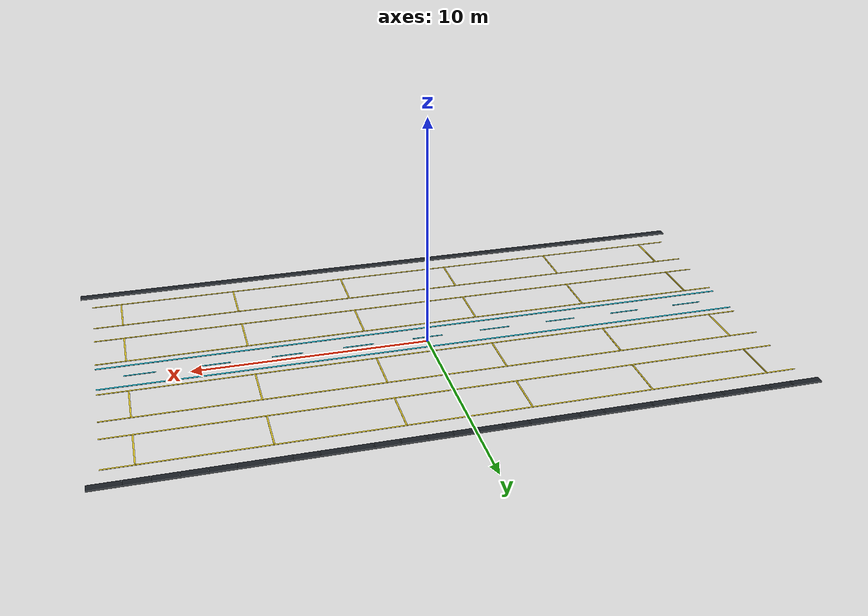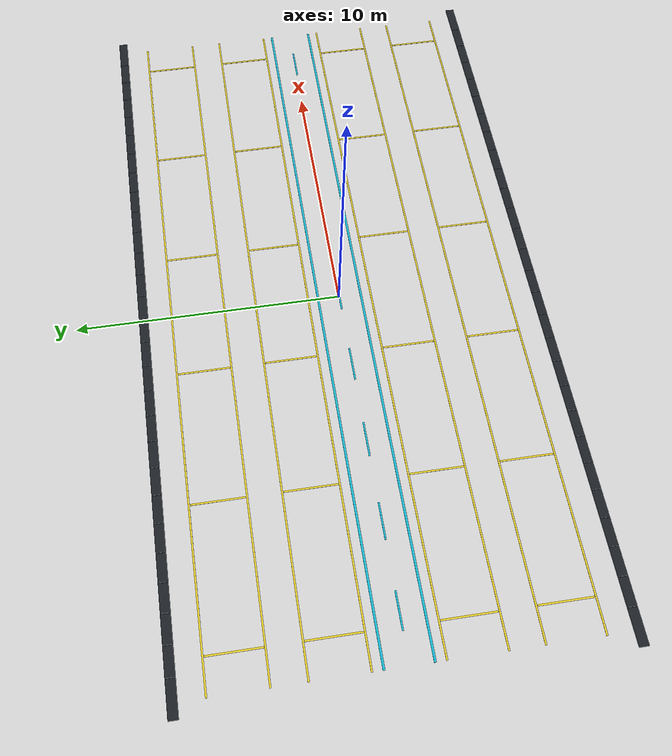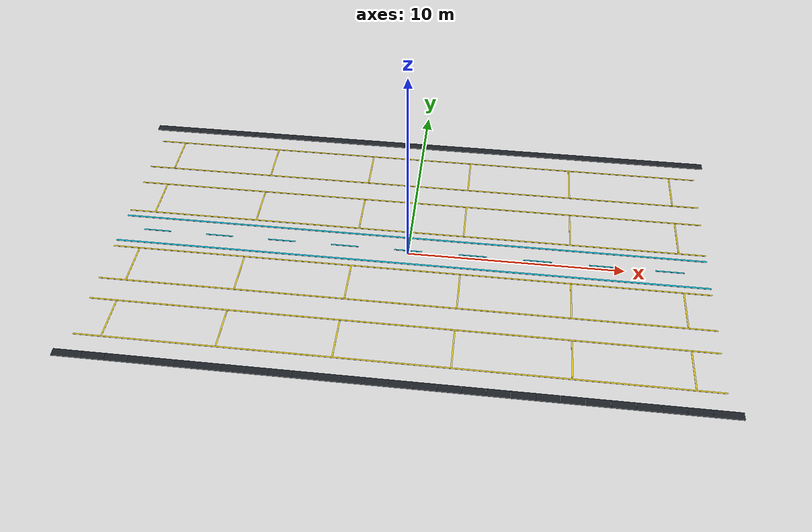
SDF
<sdf version="1.7">
 <world name="ev_car_carrier_deck_world">
  <model name="deck_markings">
   <static>true</static>
   <link name="link">
    <visual name="lane_line_-6.4_visual">
     <pose>0.0000 -6.4000 0.2080 0.0000 0.0000 0.0000</pose>
     <geometry><box><size>27.5 0.06 0.012</size></box></geometry>
     <material><ambient>0.92 0.82 0.15 1</ambient><diffuse>0.92 0.82 0.15 1</diffuse></material>
    </visual>
    <visual name="lane_line_-4.4_visual">
     <pose>0.0000 -4.4000 0.2080 0.0000 0.0000 0.0000</pose>
     <geometry><box><size>27.5 0.06 0.012</size></box></geometry>
     <material><ambient>0.92 0.82 0.15 1</ambient><diffuse>0.92 0.82 0.15 1</diffuse></material>
    </visual>
    <visual name="lane_line_-3.2_visual">
     <pose>0.0000 -3.2000 0.2080 0.0000 0.0000 0.0000</pose>
     <geometry><box><size>27.5 0.06 0.012</size></box></geometry>
     <material><ambient>0.92 0.82 0.15 1</ambient><diffuse>0.92 0.82 0.15 1</diffuse></material>
    </visual>
    <visual name="lane_line_-1.2_visual">
     <pose>0.0000 -1.2000 0.2080 0.0000 0.0000 0.0000</pose>
     <geometry><box><size>27.5 0.06 0.012</size></box></geometry>
     <material><ambient>0.92 0.82 0.15 1</ambient><diffuse>0.92 0.82 0.15 1</diffuse></material>
    </visual>
    <visual name="lane_line_1.2_visual">
     <pose>0.0000 1.2000 0.2080 0.0000 0.0000 0.0000</pose>
     <geometry><box><size>27.5 0.06 0.012</size></box></geometry>
     <material><ambient>0.92 0.82 0.15 1</ambient><diffuse>0.92 0.82 0.15 1</diffuse></material>
    </visual>
    <visual name="lane_line_3.2_visual">
     <pose>0.0000 3.2000 0.2080 0.0000 0.0000 0.0000</pose>
     <geometry><box><size>27.5 0.06 0.012</size></box></geometry>
     <material><ambient>0.92 0.82 0.15 1</ambient><diffuse>0.92 0.82 0.15 1</diffuse></material>
    </visual>
    <visual name="lane_line_4.4_visual">
     <pose>0.0000 4.4000 0.2080 0.0000 0.0000 0.0000</pose>
     <geometry><box><size>27.5 0.06 0.012</size></box></geometry>
     <material><ambient>0.92 0.82 0.15 1</ambient><diffuse>0.92 0.82 0.15 1</diffuse></material>
    </visual>
    <visual name="lane_line_6.4_visual">
     <pose>0.0000 6.4000 0.2080 0.0000 0.0000 0.0000</pose>
     <geometry><box><size>27.5 0.06 0.012</size></box></geometry>
     <material><ambient>0.92 0.82 0.15 1</ambient><diffuse>0.92 0.82 0.15 1</diffuse></material>
    </visual>
    <visual name="bay_end_-12.5_-5.4_visual">
     <pose>-12.5000 -5.4000 0.2080 0.0000 0.0000 0.0000</pose>
     <geometry><box><size>0.06 1.9 0.012</size></box></geometry>
     <material><ambient>0.92 0.82 0.15 1</ambient><diffuse>0.92 0.82 0.15 1</diffuse></material>
    </visual>
    <visual name="bay_end_-12.5_-2.2_visual">
     <pose>-12.5000 -2.2000 0.2080 0.0000 0.0000 0.0000</pose>
     <geometry><box><size>0.06 1.9 0.012</size></box></geometry>
     <material><ambient>0.92 0.82 0.15 1</ambient><diffuse>0.92 0.82 0.15 1</diffuse></material>
    </visual>
    <visual name="bay_end_-12.5_2.2_visual">
     <pose>-12.5000 2.2000 0.2080 0.0000 0.0000 0.0000</pose>
     <geometry><box><size>0.06 1.9 0.012</size></box></geometry>
     <material><ambient>0.92 0.82 0.15 1</ambient><diffuse>0.92 0.82 0.15 1</diffuse></material>
    </visual>
    <visual name="bay_end_-12.5_5.4_visual">
     <pose>-12.5000 5.4000 0.2080 0.0000 0.0000 0.0000</pose>
     <geometry><box><size>0.06 1.9 0.012</size></box></geometry>
     <material><ambient>0.92 0.82 0.15 1</ambient><diffuse>0.92 0.82 0.15 1</diffuse></material>
    </visual>
    <visual name="bay_end_-7.5_-5.4_visual">
     <pose>-7.5000 -5.4000 0.2080 0.0000 0.0000 0.0000</pose>
     <geometry><box><size>0.06 1.9 0.012</size></box></geometry>
     <material><ambient>0.92 0.82 0.15 1</ambient><diffuse>0.92 0.82 0.15 1</diffuse></material>
    </visual>
    <visual name="bay_end_-7.5_-2.2_visual">
     <pose>-7.5000 -2.2000 0.2080 0.0000 0.0000 0.0000</pose>
     <geometry><box><size>0.06 1.9 0.012</size></box></geometry>
     <material><ambient>0.92 0.82 0.15 1</ambient><diffuse>0.92 0.82 0.15 1</diffuse></material>
    </visual>
    <visual name="bay_end_-7.5_2.2_visual">
     <pose>-7.5000 2.2000 0.2080 0.0000 0.0000 0.0000</pose>
     <geometry><box><size>0.06 1.9 0.012</size></box></geometry>
     <material><ambient>0.92 0.82 0.15 1</ambient><diffuse>0.92 0.82 0.15 1</diffuse></material>
    </visual>
    <visual name="bay_end_-7.5_5.4_visual">
     <pose>-7.5000 5.4000 0.2080 0.0000 0.0000 0.0000</pose>
     <geometry><box><size>0.06 1.9 0.012</size></box></geometry>
     <material><ambient>0.92 0.82 0.15 1</ambient><diffuse>0.92 0.82 0.15 1</diffuse></material>
    </visual>
    <visual name="bay_end_-2.5_-5.4_visual">
     <pose>-2.5000 -5.4000 0.2080 0.0000 0.0000 0.0000</pose>
     <geometry><box><size>0.06 1.9 0.012</size></box></geometry>
     <material><ambient>0.92 0.82 0.15 1</ambient><diffuse>0.92 0.82 0.15 1</diffuse></material>
    </visual>
    <visual name="bay_end_-2.5_-2.2_visual">
     <pose>-2.5000 -2.2000 0.2080 0.0000 0.0000 0.0000</pose>
     <geometry><box><size>0.06 1.9 0.012</size></box></geometry>
     <material><ambient>0.92 0.82 0.15 1</ambient><diffuse>0.92 0.82 0.15 1</diffuse></material>
    </visual>
    <visual name="bay_end_-2.5_2.2_visual">
     <pose>-2.5000 2.2000 0.2080 0.0000 0.0000 0.0000</pose>
     <geometry><box><size>0.06 1.9 0.012</size></box></geometry>
     <material><ambient>0.92 0.82 0.15 1</ambient><diffuse>0.92 0.82 0.15 1</diffuse></material>
    </visual>
    <visual name="bay_end_-2.5_5.4_visual">
     <pose>-2.5000 5.4000 0.2080 0.0000 0.0000 0.0000</pose>
     <geometry><box><size>0.06 1.9 0.012</size></box></geometry>
     <material><ambient>0.92 0.82 0.15 1</ambient><diffuse>0.92 0.82 0.15 1</diffuse></material>
    </visual>
    <visual name="bay_end_2.5_-5.4_visual">
     <pose>2.5000 -5.4000 0.2080 0.0000 0.0000 0.0000</pose>
     <geometry><box><size>0.06 1.9 0.012</size></box></geometry>
     <material><ambient>0.92 0.82 0.15 1</ambient><diffuse>0.92 0.82 0.15 1</diffuse></material>
    </visual>
    <visual name="bay_end_2.5_-2.2_visual">
     <pose>2.5000 -2.2000 0.2080 0.0000 0.0000 0.0000</pose>
     <geometry><box><size>0.06 1.9 0.012</size></box></geometry>
     <material><ambient>0.92 0.82 0.15 1</ambient><diffuse>0.92 0.82 0.15 1</diffuse></material>
    </visual>
    <visual name="bay_end_2.5_2.2_visual">
     <pose>2.5000 2.2000 0.2080 0.0000 0.0000 0.0000</pose>
     <geometry><box><size>0.06 1.9 0.012</size></box></geometry>
     <material><ambient>0.92 0.82 0.15 1</ambient><diffuse>0.92 0.82 0.15 1</diffuse></material>
    </visual>
    <visual name="bay_end_2.5_5.4_visual">
     <pose>2.5000 5.4000 0.2080 0.0000 0.0000 0.0000</pose>
     <geometry><box><size>0.06 1.9 0.012</size></box></geometry>
     <material><ambient>0.92 0.82 0.15 1</ambient><diffuse>0.92 0.82 0.15 1</diffuse></material>
    </visual>
    <visual name="bay_end_7.5_-5.4_visual">
     <pose>7.5000 -5.4000 0.2080 0.0000 0.0000 0.0000</pose>
     <geometry><box><size>0.06 1.9 0.012</size></box></geometry>
     <material><ambient>0.92 0.82 0.15 1</ambient><diffuse>0.92 0.82 0.15 1</diffuse></material>
    </visual>
    <visual name="bay_end_7.5_-2.2_visual">
     <pose>7.5000 -2.2000 0.2080 0.0000 0.0000 0.0000</pose>
     <geometry><box><size>0.06 1.9 0.012</size></box></geometry>
     <material><ambient>0.92 0.82 0.15 1</ambient><diffuse>0.92 0.82 0.15 1</diffuse></material>
    </visual>
    <visual name="bay_end_7.5_2.2_visual">
     <pose>7.5000 2.2000 0.2080 0.0000 0.0000 0.0000</pose>
     <geometry><box><size>0.06 1.9 0.012</size></box></geometry>
     <material><ambient>0.92 0.82 0.15 1</ambient><diffuse>0.92 0.82 0.15 1</diffuse></material>
    </visual>
    <visual name="bay_end_7.5_5.4_visual">
     <pose>7.5000 5.4000 0.2080 0.0000 0.0000 0.0000</pose>
     <geometry><box><size>0.06 1.9 0.012</size></box></geometry>
     <material><ambient>0.92 0.82 0.15 1</ambient><diffuse>0.92 0.82 0.15 1</diffuse></material>
    </visual>
    <visual name="bay_end_12.5_-5.4_visual">
     <pose>12.5000 -5.4000 0.2080 0.0000 0.0000 0.0000</pose>
     <geometry><box><size>0.06 1.9 0.012</size></box></geometry>
     <material><ambient>0.92 0.82 0.15 1</ambient><diffuse>0.92 0.82 0.15 1</diffuse></material>
    </visual>
    <visual name="bay_end_12.5_-2.2_visual">
     <pose>12.5000 -2.2000 0.2080 0.0000 0.0000 0.0000</pose>
     <geometry><box><size>0.06 1.9 0.012</size></box></geometry>
     <material><ambient>0.92 0.82 0.15 1</ambient><diffuse>0.92 0.82 0.15 1</diffuse></material>
    </visual>
    <visual name="bay_end_12.5_2.2_visual">
     <pose>12.5000 2.2000 0.2080 0.0000 0.0000 0.0000</pose>
     <geometry><box><size>0.06 1.9 0.012</size></box></geometry>
     <material><ambient>0.92 0.82 0.15 1</ambient><diffuse>0.92 0.82 0.15 1</diffuse></material>
    </visual>
    <visual name="bay_end_12.5_5.4_visual">
     <pose>12.5000 5.4000 0.2080 0.0000 0.0000 0.0000</pose>
     <geometry><box><size>0.06 1.9 0.012</size></box></geometry>
     <material><ambient>0.92 0.82 0.15 1</ambient><diffuse>0.92 0.82 0.15 1</diffuse></material>
    </visual>
    <visual name="robot_lane_left_visual">
     <pose>0.0000 -0.8200 0.2100 0.0000 0.0000 0.0000</pose>
     <geometry><box><size>27.5 0.08 0.012</size></box></geometry>
     <material><ambient>0.08 0.72 0.82 1</ambient><diffuse>0.08 0.72 0.82 1</diffuse></material>
    </visual>
    <visual name="robot_lane_right_visual">
     <pose>0.0000 0.8200 0.2100 0.0000 0.0000 0.0000</pose>
     <geometry><box><size>27.5 0.08 0.012</size></box></geometry>
     <material><ambient>0.08 0.72 0.82 1</ambient><diffuse>0.08 0.72 0.82 1</diffuse></material>
    </visual>
    <visual name="robot_lane_dash_-12_visual">
     <pose>-12.0000 0.0000 0.2120 0.0000 0.0000 0.0000</pose>
     <geometry><box><size>1.3 0.06 0.012</size></box></geometry>
     <material><ambient>0.08 0.72 0.82 1</ambient><diffuse>0.08 0.72 0.82 1</diffuse></material>
    </visual>
    <visual name="robot_lane_dash_-9_visual">
     <pose>-9.0000 0.0000 0.2120 0.0000 0.0000 0.0000</pose>
     <geometry><box><size>1.3 0.06 0.012</size></box></geometry>
     <material><ambient>0.08 0.72 0.82 1</ambient><diffuse>0.08 0.72 0.82 1</diffuse></material>
    </visual>
    <visual name="robot_lane_dash_-6_visual">
     <pose>-6.0000 0.0000 0.2120 0.0000 0.0000 0.0000</pose>
     <geometry><box><size>1.3 0.06 0.012</size></box></geometry>
     <material><ambient>0.08 0.72 0.82 1</ambient><diffuse>0.08 0.72 0.82 1</diffuse></material>
    </visual>
    <visual name="robot_lane_dash_-3_visual">
     <pose>-3.0000 0.0000 0.2120 0.0000 0.0000 0.0000</pose>
     <geometry><box><size>1.3 0.06 0.012</size></box></geometry>
     <material><ambient>0.08 0.72 0.82 1</ambient><diffuse>0.08 0.72 0.82 1</diffuse></material>
    </visual>
    <visual name="robot_lane_dash_0_visual">
     <pose>0.0000 0.0000 0.2120 0.0000 0.0000 0.0000</pose>
     <geometry><box><size>1.3 0.06 0.012</size></box></geometry>
     <material><ambient>0.08 0.72 0.82 1</ambient><diffuse>0.08 0.72 0.82 1</diffuse></material>
    </visual>
    <visual name="robot_lane_dash_3_visual">
     <pose>3.0000 0.0000 0.2120 0.0000 0.0000 0.0000</pose>
     <geometry><box><size>1.3 0.06 0.012</size></box></geometry>
     <material><ambient>0.08 0.72 0.82 1</ambient><diffuse>0.08 0.72 0.82 1</diffuse></material>
    </visual>
    <visual name="robot_lane_dash_6_visual">
     <pose>6.0000 0.0000 0.2120 0.0000 0.0000 0.0000</pose>
     <geometry><box><size>1.3 0.06 0.012</size></box></geometry>
     <material><ambient>0.08 0.72 0.82 1</ambient><diffuse>0.08 0.72 0.82 1</diffuse></material>
    </visual>
    <visual name="robot_lane_dash_9_visual">
     <pose>9.0000 0.0000 0.2120 0.0000 0.0000 0.0000</pose>
     <geometry><box><size>1.3 0.06 0.012</size></box></geometry>
     <material><ambient>0.08 0.72 0.82 1</ambient><diffuse>0.08 0.72 0.82 1</diffuse></material>
    </visual>
    <visual name="robot_lane_dash_12_visual">
     <pose>12.0000 0.0000 0.2120 0.0000 0.0000 0.0000</pose>
     <geometry><box><size>1.3 0.06 0.012</size></box></geometry>
     <material><ambient>0.08 0.72 0.82 1</ambient><diffuse>0.08 0.72 0.82 1</diffuse></material>
    </visual>
   </link>
  </model>
  <model name="deck_drainage">
   <static>true</static>
   <link name="link">
    <collision name="gutter_-7.45_collision">
     <pose>0.0000 -7.4500 0.2250 0.0000 0.0000 0.0000</pose>
     <geometry><box><size>28.5 0.34 0.05</size></box></geometry>
    </collision>
    <visual name="gutter_-7.45_visual">
     <pose>0.0000 -7.4500 0.2250 0.0000 0.0000 0.0000</pose>
     <geometry><box><size>28.5 0.34 0.05</size></box></geometry>
     <material><ambient>0.11 0.13 0.15 1</ambient><diffuse>0.11 0.13 0.15 1</diffuse></material>
    </visual>
    <visual name="grate_-7.45_-13_visual">
     <pose>-13.0000 -7.4500 0.2580 0.0000 0.0000 0.0000</pose>
     <geometry><box><size>0.03 0.3 0.018</size></box></geometry>
     <material><ambient>0.34 0.37 0.4 1</ambient><diffuse>0.34 0.37 0.4 1</diffuse></material>
    </visual>
    <visual name="grate_-7.45_-12_visual">
     <pose>-12.0000 -7.4500 0.2580 0.0000 0.0000 0.0000</pose>
     <geometry><box><size>0.03 0.3 0.018</size></box></geometry>
     <material><ambient>0.34 0.37 0.4 1</ambient><diffuse>0.34 0.37 0.4 1</diffuse></material>
    </visual>
    <visual name="grate_-7.45_-11_visual">
     <pose>-11.0000 -7.4500 0.2580 0.0000 0.0000 0.0000</pose>
     <geometry><box><size>0.03 0.3 0.018</size></box></geometry>
     <material><ambient>0.34 0.37 0.4 1</ambient><diffuse>0.34 0.37 0.4 1</diffuse></material>
    </visual>
    <visual name="grate_-7.45_-10_visual">
     <pose>-10.0000 -7.4500 0.2580 0.0000 0.0000 0.0000</pose>
     <geometry><box><size>0.03 0.3 0.018</size></box></geometry>
     <material><ambient>0.34 0.37 0.4 1</ambient><diffuse>0.34 0.37 0.4 1</diffuse></material>
    </visual>
    <visual name="grate_-7.45_-9_visual">
     <pose>-9.0000 -7.4500 0.2580 0.0000 0.0000 0.0000</pose>
     <geometry><box><size>0.03 0.3 0.018</size></box></geometry>
     <material><ambient>0.34 0.37 0.4 1</ambient><diffuse>0.34 0.37 0.4 1</diffuse></material>
    </visual>
    <visual name="grate_-7.45_-8_visual">
     <pose>-8.0000 -7.4500 0.2580 0.0000 0.0000 0.0000</pose>
     <geometry><box><size>0.03 0.3 0.018</size></box></geometry>
     <material><ambient>0.34 0.37 0.4 1</ambient><diffuse>0.34 0.37 0.4 1</diffuse></material>
    </visual>
    <visual name="grate_-7.45_-7_visual">
     <pose>-7.0000 -7.4500 0.2580 0.0000 0.0000 0.0000</pose>
     <geometry><box><size>0.03 0.3 0.018</size></box></geometry>
     <material><ambient>0.34 0.37 0.4 1</ambient><diffuse>0.34 0.37 0.4 1</diffuse></material>
    </visual>
    <visual name="grate_-7.45_-6_visual">
     <pose>-6.0000 -7.4500 0.2580 0.0000 0.0000 0.0000</pose>
     <geometry><box><size>0.03 0.3 0.018</size></box></geometry>
     <material><ambient>0.34 0.37 0.4 1</ambient><diffuse>0.34 0.37 0.4 1</diffuse></material>
    </visual>
    <visual name="grate_-7.45_-5_visual">
     <pose>-5.0000 -7.4500 0.2580 0.0000 0.0000 0.0000</pose>
     <geometry><box><size>0.03 0.3 0.018</size></box></geometry>
     <material><ambient>0.34 0.37 0.4 1</ambient><diffuse>0.34 0.37 0.4 1</diffuse></material>
    </visual>
    <visual name="grate_-7.45_-4_visual">
     <pose>-4.0000 -7.4500 0.2580 0.0000 0.0000 0.0000</pose>
     <geometry><box><size>0.03 0.3 0.018</size></box></geometry>
     <material><ambient>0.34 0.37 0.4 1</ambient><diffuse>0.34 0.37 0.4 1</diffuse></material>
    </visual>
    <visual name="grate_-7.45_-3_visual">
     <pose>-3.0000 -7.4500 0.2580 0.0000 0.0000 0.0000</pose>
     <geometry><box><size>0.03 0.3 0.018</size></box></geometry>
     <material><ambient>0.34 0.37 0.4 1</ambient><diffuse>0.34 0.37 0.4 1</diffuse></material>
    </visual>
    <visual name="grate_-7.45_-2_visual">
     <pose>-2.0000 -7.4500 0.2580 0.0000 0.0000 0.0000</pose>
     <geometry><box><size>0.03 0.3 0.018</size></box></geometry>
     <material><ambient>0.34 0.37 0.4 1</ambient><diffuse>0.34 0.37 0.4 1</diffuse></material>
    </visual>
    <visual name="grate_-7.45_-1_visual">
     <pose>-1.0000 -7.4500 0.2580 0.0000 0.0000 0.0000</pose>
     <geometry><box><size>0.03 0.3 0.018</size></box></geometry>
     <material><ambient>0.34 0.37 0.4 1</ambient><diffuse>0.34 0.37 0.4 1</diffuse></material>
    </visual>
    <visual name="grate_-7.45_0_visual">
     <pose>0.0000 -7.4500 0.2580 0.0000 0.0000 0.0000</pose>
     <geometry><box><size>0.03 0.3 0.018</size></box></geometry>
     <material><ambient>0.34 0.37 0.4 1</ambient><diffuse>0.34 0.37 0.4 1</diffuse></material>
    </visual>
    <visual name="grate_-7.45_1_visual">
     <pose>1.0000 -7.4500 0.2580 0.0000 0.0000 0.0000</pose>
     <geometry><box><size>0.03 0.3 0.018</size></box></geometry>
     <material><ambient>0.34 0.37 0.4 1</ambient><diffuse>0.34 0.37 0.4 1</diffuse></material>
    </visual>
    <visual name="grate_-7.45_2_visual">
     <pose>2.0000 -7.4500 0.2580 0.0000 0.0000 0.0000</pose>
     <geometry><box><size>0.03 0.3 0.018</size></box></geometry>
     <material><ambient>0.34 0.37 0.4 1</ambient><diffuse>0.34 0.37 0.4 1</diffuse></material>
    </visual>
    <visual name="grate_-7.45_3_visual">
     <pose>3.0000 -7.4500 0.2580 0.0000 0.0000 0.0000</pose>
     <geometry><box><size>0.03 0.3 0.018</size></box></geometry>
     <material><ambient>0.34 0.37 0.4 1</ambient><diffuse>0.34 0.37 0.4 1</diffuse></material>
    </visual>
    <visual name="grate_-7.45_4_visual">
     <pose>4.0000 -7.4500 0.2580 0.0000 0.0000 0.0000</pose>
     <geometry><box><size>0.03 0.3 0.018</size></box></geometry>
     <material><ambient>0.34 0.37 0.4 1</ambient><diffuse>0.34 0.37 0.4 1</diffuse></material>
    </visual>
    <visual name="grate_-7.45_5_visual">
     <pose>5.0000 -7.4500 0.2580 0.0000 0.0000 0.0000</pose>
     <geometry><box><size>0.03 0.3 0.018</size></box></geometry>
     <material><ambient>0.34 0.37 0.4 1</ambient><diffuse>0.34 0.37 0.4 1</diffuse></material>
    </visual>
    <visual name="grate_-7.45_6_visual">
     <pose>6.0000 -7.4500 0.2580 0.0000 0.0000 0.0000</pose>
     <geometry><box><size>0.03 0.3 0.018</size></box></geometry>
     <material><ambient>0.34 0.37 0.4 1</ambient><diffuse>0.34 0.37 0.4 1</diffuse></material>
    </visual>
    <visual name="grate_-7.45_7_visual">
     <pose>7.0000 -7.4500 0.2580 0.0000 0.0000 0.0000</pose>
     <geometry><box><size>0.03 0.3 0.018</size></box></geometry>
     <material><ambient>0.34 0.37 0.4 1</ambient><diffuse>0.34 0.37 0.4 1</diffuse></material>
    </visual>
    <visual name="grate_-7.45_8_visual">
     <pose>8.0000 -7.4500 0.2580 0.0000 0.0000 0.0000</pose>
     <geometry><box><size>0.03 0.3 0.018</size></box></geometry>
     <material><ambient>0.34 0.37 0.4 1</ambient><diffuse>0.34 0.37 0.4 1</diffuse></material>
    </visual>
    <visual name="grate_-7.45_9_visual">
     <pose>9.0000 -7.4500 0.2580 0.0000 0.0000 0.0000</pose>
     <geometry><box><size>0.03 0.3 0.018</size></box></geometry>
     <material><ambient>0.34 0.37 0.4 1</ambient><diffuse>0.34 0.37 0.4 1</diffuse></material>
    </visual>
    <visual name="grate_-7.45_10_visual">
     <pose>10.0000 -7.4500 0.2580 0.0000 0.0000 0.0000</pose>
     <geometry><box><size>0.03 0.3 0.018</size></box></geometry>
     <material><ambient>0.34 0.37 0.4 1</ambient><diffuse>0.34 0.37 0.4 1</diffuse></material>
    </visual>
    <visual name="grate_-7.45_11_visual">
     <pose>11.0000 -7.4500 0.2580 0.0000 0.0000 0.0000</pose>
     <geometry><box><size>0.03 0.3 0.018</size></box></geometry>
     <material><ambient>0.34 0.37 0.4 1</ambient><diffuse>0.34 0.37 0.4 1</diffuse></material>
    </visual>
    <visual name="grate_-7.45_12_visual">
     <pose>12.0000 -7.4500 0.2580 0.0000 0.0000 0.0000</pose>
     <geometry><box><size>0.03 0.3 0.018</size></box></geometry>
     <material><ambient>0.34 0.37 0.4 1</ambient><diffuse>0.34 0.37 0.4 1</diffuse></material>
    </visual>
    <visual name="grate_-7.45_13_visual">
     <pose>13.0000 -7.4500 0.2580 0.0000 0.0000 0.0000</pose>
     <geometry><box><size>0.03 0.3 0.018</size></box></geometry>
     <material><ambient>0.34 0.37 0.4 1</ambient><diffuse>0.34 0.37 0.4 1</diffuse></material>
    </visual>
    <collision name="gutter_7.45_collision">
     <pose>0.0000 7.4500 0.2250 0.0000 0.0000 0.0000</pose>
     <geometry><box><size>28.5 0.34 0.05</size></box></geometry>
    </collision>
    <visual name="gutter_7.45_visual">
     <pose>0.0000 7.4500 0.2250 0.0000 0.0000 0.0000</pose>
     <geometry><box><size>28.5 0.34 0.05</size></box></geometry>
     <material><ambient>0.11 0.13 0.15 1</ambient><diffuse>0.11 0.13 0.15 1</diffuse></material>
    </visual>
    <visual name="grate_7.45_-13_visual">
     <pose>-13.0000 7.4500 0.2580 0.0000 0.0000 0.0000</pose>
     <geometry><box><size>0.03 0.3 0.018</size></box></geometry>
     <material><ambient>0.34 0.37 0.4 1</ambient><diffuse>0.34 0.37 0.4 1</diffuse></material>
    </visual>
    <visual name="grate_7.45_-12_visual">
     <pose>-12.0000 7.4500 0.2580 0.0000 0.0000 0.0000</pose>
     <geometry><box><size>0.03 0.3 0.018</size></box></geometry>
     <material><ambient>0.34 0.37 0.4 1</ambient><diffuse>0.34 0.37 0.4 1</diffuse></material>
    </visual>
    <visual name="grate_7.45_-11_visual">
     <pose>-11.0000 7.4500 0.2580 0.0000 0.0000 0.0000</pose>
     <geometry><box><size>0.03 0.3 0.018</size></box></geometry>
     <material><ambient>0.34 0.37 0.4 1</ambient><diffuse>0.34 0.37 0.4 1</diffuse></material>
    </visual>
    <visual name="grate_7.45_-10_visual">
     <pose>-10.0000 7.4500 0.2580 0.0000 0.0000 0.0000</pose>
     <geometry><box><size>0.03 0.3 0.018</size></box></geometry>
     <material><ambient>0.34 0.37 0.4 1</ambient><diffuse>0.34 0.37 0.4 1</diffuse></material>
    </visual>
    <visual name="grate_7.45_-9_visual">
     <pose>-9.0000 7.4500 0.2580 0.0000 0.0000 0.0000</pose>
     <geometry><box><size>0.03 0.3 0.018</size></box></geometry>
     <material><ambient>0.34 0.37 0.4 1</ambient><diffuse>0.34 0.37 0.4 1</diffuse></material>
    </visual>
    <visual name="grate_7.45_-8_visual">
     <pose>-8.0000 7.4500 0.2580 0.0000 0.0000 0.0000</pose>
     <geometry><box><size>0.03 0.3 0.018</size></box></geometry>
     <material><ambient>0.34 0.37 0.4 1</ambient><diffuse>0.34 0.37 0.4 1</diffuse></material>
    </visual>
    <visual name="grate_7.45_-7_visual">
     <pose>-7.0000 7.4500 0.2580 0.0000 0.0000 0.0000</pose>
     <geometry><box><size>0.03 0.3 0.018</size></box></geometry>
     <material><ambient>0.34 0.37 0.4 1</ambient><diffuse>0.34 0.37 0.4 1</diffuse></material>
    </visual>
    <visual name="grate_7.45_-6_visual">
     <pose>-6.0000 7.4500 0.2580 0.0000 0.0000 0.0000</pose>
     <geometry><box><size>0.03 0.3 0.018</size></box></geometry>
     <material><ambient>0.34 0.37 0.4 1</ambient><diffuse>0.34 0.37 0.4 1</diffuse></material>
    </visual>
    <visual name="grate_7.45_-5_visual">
     <pose>-5.0000 7.4500 0.2580 0.0000 0.0000 0.0000</pose>
     <geometry><box><size>0.03 0.3 0.018</size></box></geometry>
     <material><ambient>0.34 0.37 0.4 1</ambient><diffuse>0.34 0.37 0.4 1</diffuse></material>
    </visual>
    <visual name="grate_7.45_-4_visual">
     <pose>-4.0000 7.4500 0.2580 0.0000 0.0000 0.0000</pose>
     <geometry><box><size>0.03 0.3 0.018</size></box></geometry>
     <material><ambient>0.34 0.37 0.4 1</ambient><diffuse>0.34 0.37 0.4 1</diffuse></material>
    </visual>
    <visual name="grate_7.45_-3_visual">
     <pose>-3.0000 7.4500 0.2580 0.0000 0.0000 0.0000</pose>
     <geometry><box><size>0.03 0.3 0.018</size></box></geometry>
     <material><ambient>0.34 0.37 0.4 1</ambient><diffuse>0.34 0.37 0.4 1</diffuse></material>
    </visual>
    <visual name="grate_7.45_-2_visual">
     <pose>-2.0000 7.4500 0.2580 0.0000 0.0000 0.0000</pose>
     <geometry><box><size>0.03 0.3 0.018</size></box></geometry>
     <material><ambient>0.34 0.37 0.4 1</ambient><diffuse>0.34 0.37 0.4 1</diffuse></material>
    </visual>
    <visual name="grate_7.45_-1_visual">
     <pose>-1.0000 7.4500 0.2580 0.0000 0.0000 0.0000</pose>
     <geometry><box><size>0.03 0.3 0.018</size></box></geometry>
     <material><ambient>0.34 0.37 0.4 1</ambient><diffuse>0.34 0.37 0.4 1</diffuse></material>
    </visual>
    <visual name="grate_7.45_0_visual">
     <pose>0.0000 7.4500 0.2580 0.0000 0.0000 0.0000</pose>
     <geometry><box><size>0.03 0.3 0.018</size></box></geometry>
     <material><ambient>0.34 0.37 0.4 1</ambient><diffuse>0.34 0.37 0.4 1</diffuse></material>
    </visual>
    <visual name="grate_7.45_1_visual">
     <pose>1.0000 7.4500 0.2580 0.0000 0.0000 0.0000</pose>
     <geometry><box><size>0.03 0.3 0.018</size></box></geometry>
     <material><ambient>0.34 0.37 0.4 1</ambient><diffuse>0.34 0.37 0.4 1</diffuse></material>
    </visual>
    <visual name="grate_7.45_2_visual">
     <pose>2.0000 7.4500 0.2580 0.0000 0.0000 0.0000</pose>
     <geometry><box><size>0.03 0.3 0.018</size></box></geometry>
     <material><ambient>0.34 0.37 0.4 1</ambient><diffuse>0.34 0.37 0.4 1</diffuse></material>
    </visual>
    <visual name="grate_7.45_3_visual">
     <pose>3.0000 7.4500 0.2580 0.0000 0.0000 0.0000</pose>
     <geometry><box><size>0.03 0.3 0.018</size></box></geometry>
     <material><ambient>0.34 0.37 0.4 1</ambient><diffuse>0.34 0.37 0.4 1</diffuse></material>
    </visual>
    <visual name="grate_7.45_4_visual">
     <pose>4.0000 7.4500 0.2580 0.0000 0.0000 0.0000</pose>
     <geometry><box><size>0.03 0.3 0.018</size></box></geometry>
     <material><ambient>0.34 0.37 0.4 1</ambient><diffuse>0.34 0.37 0.4 1</diffuse></material>
    </visual>
    <visual name="grate_7.45_5_visual">
     <pose>5.0000 7.4500 0.2580 0.0000 0.0000 0.0000</pose>
     <geometry><box><size>0.03 0.3 0.018</size></box></geometry>
     <material><ambient>0.34 0.37 0.4 1</ambient><diffuse>0.34 0.37 0.4 1</diffuse></material>
    </visual>
    <visual name="grate_7.45_6_visual">
     <pose>6.0000 7.4500 0.2580 0.0000 0.0000 0.0000</pose>
     <geometry><box><size>0.03 0.3 0.018</size></box></geometry>
     <material><ambient>0.34 0.37 0.4 1</ambient><diffuse>0.34 0.37 0.4 1</diffuse></material>
    </visual>
    <visual name="grate_7.45_7_visual">
     <pose>7.0000 7.4500 0.2580 0.0000 0.0000 0.0000</pose>
     <geometry><box><size>0.03 0.3 0.018</size></box></geometry>
     <material><ambient>0.34 0.37 0.4 1</ambient><diffuse>0.34 0.37 0.4 1</diffuse></material>
    </visual>
    <visual name="grate_7.45_8_visual">
     <pose>8.0000 7.4500 0.2580 0.0000 0.0000 0.0000</pose>
     <geometry><box><size>0.03 0.3 0.018</size></box></geometry>
     <material><ambient>0.34 0.37 0.4 1</ambient><diffuse>0.34 0.37 0.4 1</diffuse></material>
    </visual>
    <visual name="grate_7.45_9_visual">
     <pose>9.0000 7.4500 0.2580 0.0000 0.0000 0.0000</pose>
     <geometry><box><size>0.03 0.3 0.018</size></box></geometry>
     <material><ambient>0.34 0.37 0.4 1</ambient><diffuse>0.34 0.37 0.4 1</diffuse></material>
    </visual>
    <visual name="grate_7.45_10_visual">
     <pose>10.0000 7.4500 0.2580 0.0000 0.0000 0.0000</pose>
     <geometry><box><size>0.03 0.3 0.018</size></box></geometry>
     <material><ambient>0.34 0.37 0.4 1</ambient><diffuse>0.34 0.37 0.4 1</diffuse></material>
    </visual>
    <visual name="grate_7.45_11_visual">
     <pose>11.0000 7.4500 0.2580 0.0000 0.0000 0.0000</pose>
     <geometry><box><size>0.03 0.3 0.018</size></box></geometry>
     <material><ambient>0.34 0.37 0.4 1</ambient><diffuse>0.34 0.37 0.4 1</diffuse></material>
    </visual>
    <visual name="grate_7.45_12_visual">
     <pose>12.0000 7.4500 0.2580 0.0000 0.0000 0.0000</pose>
     <geometry><box><size>0.03 0.3 0.018</size></box></geometry>
     <material><ambient>0.34 0.37 0.4 1</ambient><diffuse>0.34 0.37 0.4 1</diffuse></material>
    </visual>
    <visual name="grate_7.45_13_visual">
     <pose>13.0000 7.4500 0.2580 0.0000 0.0000 0.0000</pose>
     <geometry><box><size>0.03 0.3 0.018</size></box></geometry>
     <material><ambient>0.34 0.37 0.4 1</ambient><diffuse>0.34 0.37 0.4 1</diffuse></material>
    </visual>
   </link>
  </model>
 </world>
</sdf>
